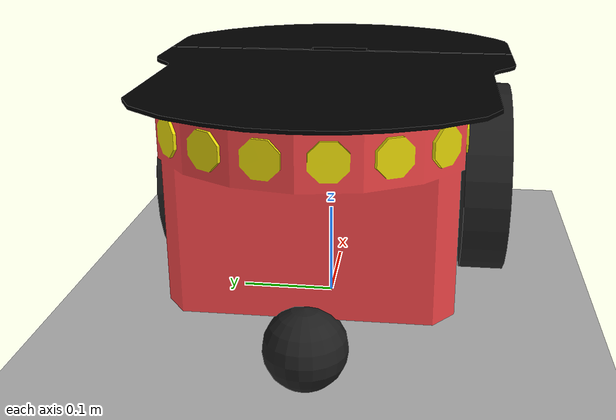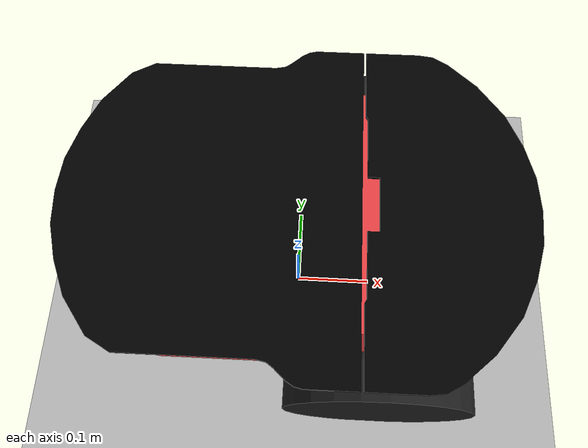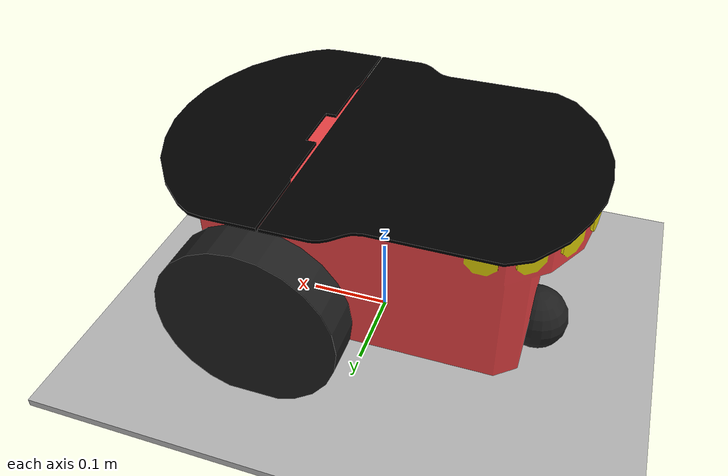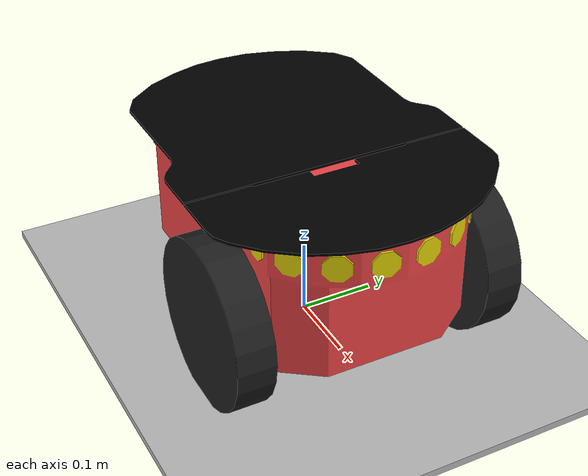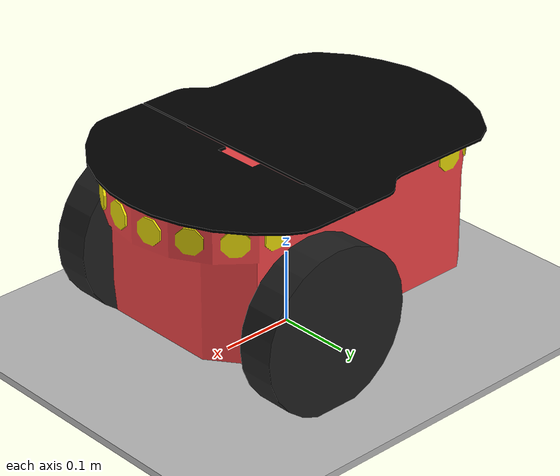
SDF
<sdf version="1.4">
 <world name="default">
  <light name="sun" type="directional">
   <pose>0 0 10 0 -0 0</pose>
   <diffuse>0.8 0.8 0.8 1</diffuse>
   <specular>0.2 0.2 0.2 1</specular>
   <attenuation>
    <range>1000</range>
    <constant>0.9</constant>
    <linear>0.01</linear>
    <quadratic>0.001</quadratic>
   </attenuation>
   <direction>-0.5 0.1 -0.9</direction>
  </light>
  <model name="ground_plane">
   <static>1</static>
   <link name="link">
    <collision name="collision">
     <geometry><plane><normal>0 0 1</normal><size>100 100</size></plane></geometry>
     <surface><friction><ode><mu>100</mu><mu2>50</mu2></ode></friction></surface>
    </collision>
    <visual name="visual">
     <cast_shadows>0</cast_shadows>
     <geometry><plane><normal>0 0 1</normal><size>100 100</size></plane></geometry>
     <material>
      <script><uri>file://media/materials/scripts/gazebo.material</uri><name>Gazebo/Grey</name></script>
     </material>
    </visual>
    <velocity_decay><linear>0</linear><angular>0</angular></velocity_decay>
   </link>
  </model>
  <model name="slope">
   <static>true</static>
   <link name="link">
    <collision name="collision">
     <geometry><box><size>5 5 0.01</size></box></geometry>
     <surface><friction><ode><mu>0.0</mu><mu2>0.0</mu2></ode></friction></surface>
    </collision>
    <visual name="visual">
     <geometry><box><size>5 5 0.01</size></box></geometry>
     <material><script>Gazebo/WoodPallet</script></material>
    </visual>
   </link>
  </model>
  <physics type="ode">
   <max_step_size>0.001</max_step_size>
   <real_time_factor>1</real_time_factor>
   <real_time_update_rate>1000</real_time_update_rate>
   <gravity>0 0 -9.8</gravity>
  </physics>
  <scene><ambient>0.4 0.4 0.4 1</ambient><background>0.7 0.7 0.7 1</background><shadows>1</shadows></scene>
  <spherical_coordinates>
   <surface_model>EARTH_WGS84</surface_model>
   <latitude_deg>0</latitude_deg>
   <longitude_deg>0</longitude_deg>
   <elevation>0</elevation>
   <heading_deg>0</heading_deg>
  </spherical_coordinates>
  <model name="pioneer2dx">
   <link name="chassis">
    <pose>0 0 0.16 0 -0 0</pose>
    <inertial>
     <mass>5.67</mass>
     <inertia><ixx>0.07</ixx><iyy>0.08</iyy><izz>0.1</izz><ixy>0</ixy><ixz>0</ixz><iyz>0</iyz></inertia>
    </inertial>
    <collision name="collision"><geometry><box><size>0.445 0.277 0.17</size></box></geometry></collision>
    <collision name="castor_collision">
     <pose>-0.2 0 -0.12 0 -0 0</pose>
     <geometry><sphere><radius>0.04</radius></sphere></geometry>
     <surface><friction><ode><mu>0</mu><mu2>0</mu2><slip1>1</slip1><slip2>1</slip2></ode></friction></surface>
    </collision>
    <visual name="visual">
     <pose>0 0 0.04 0 -0 0</pose>
     <geometry><mesh><uri>model://pioneer2dx/meshes/chassis.dae</uri></mesh></geometry>
    </visual>
    <visual name="castor_visual">
     <pose>-0.2 0 -0.12 0 -0 0</pose>
     <geometry><sphere><radius>0.04</radius></sphere></geometry>
     <material>
      <script><uri>file://media/materials/scripts/gazebo.material</uri><name>Gazebo/FlatBlack</name></script>
     </material>
    </visual>
    <velocity_decay><linear>0</linear><angular>0</angular></velocity_decay>
   </link>
   <link name="right_wheel">
    <pose>0.1 -0.17 0.11 0 1.5707 1.5707</pose>
    <inertial>
     <mass>1.5</mass>
     <inertia><ixx>0.0051</ixx><iyy>0.0051</iyy><izz>0.009</izz><ixy>0</ixy><ixz>0</ixz><iyz>0</iyz></inertia>
    </inertial>
    <collision name="collision">
     <geometry><cylinder><radius>0.11</radius><length>0.05</length></cylinder></geometry>
     <surface>
      <friction><ode><mu>100000</mu><mu2>100000</mu2><slip1>0</slip1><slip2>0</slip2></ode></friction>
     </surface>
    </collision>
    <visual name="visual">
     <geometry><cylinder><radius>0.11</radius><length>0.05</length></cylinder></geometry>
     <material>
      <script><uri>file://media/materials/scripts/gazebo.material</uri><name>Gazebo/FlatBlack</name></script>
     </material>
    </visual>
    <velocity_decay><linear>0</linear><angular>0</angular></velocity_decay>
   </link>
   <link name="left_wheel">
    <pose>0.1 0.17 0.11 0 1.5707 1.5707</pose>
    <inertial>
     <mass>1.5</mass>
     <inertia><ixx>0.0051</ixx><iyy>0.0051</iyy><izz>0.009</izz><ixy>0</ixy><ixz>0</ixz><iyz>0</iyz></inertia>
    </inertial>
    <collision name="collision">
     <geometry><cylinder><radius>0.11</radius><length>0.05</length></cylinder></geometry>
     <surface>
      <friction><ode><mu>100000</mu><mu2>100000</mu2><slip1>0</slip1><slip2>0</slip2></ode></friction>
     </surface>
    </collision>
    <visual name="visual">
     <geometry><cylinder><radius>0.11</radius><length>0.05</length></cylinder></geometry>
     <material>
      <script><uri>file://media/materials/scripts/gazebo.material</uri><name>Gazebo/FlatBlack</name></script>
     </material>
    </visual>
    <velocity_decay><linear>0</linear><angular>0</angular></velocity_decay>
   </link>
   <joint name="left_wheel_hinge" type="revolute">
    <pose>0 0 -0.03 0 -0 0</pose>
    <child>left_wheel</child>
    <parent>chassis</parent>
    <axis><xyz>0 1 0</xyz><limit><lower>-1e+16</lower><upper>1e+16</upper></limit></axis>
   </joint>
   <joint name="right_wheel_hinge" type="revolute">
    <pose>0 0 0.03 0 -0 0</pose>
    <child>right_wheel</child>
    <parent>chassis</parent>
    <axis><xyz>0 1 0</xyz><limit><lower>-1e+16</lower><upper>1e+16</upper></limit></axis>
   </joint>
   <static>0</static>
   <plugin name="object_controller" filename="libgazebo_ros_planar_move.so">
    <commandTopic>cmd_vel</commandTopic>
    <odometryTopic>odom</odometryTopic>
    <odometryFrame>odonm</odometryFrame>
    <odometryRate>20.0</odometryRate>
    <robotBaseFrame>chassis</robotBaseFrame>
    <joint_state_idel_sec>3.0</joint_state_idel_sec>
   </plugin>
  </model>
 </world>
</sdf>
